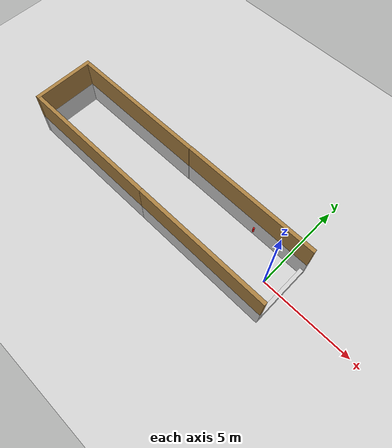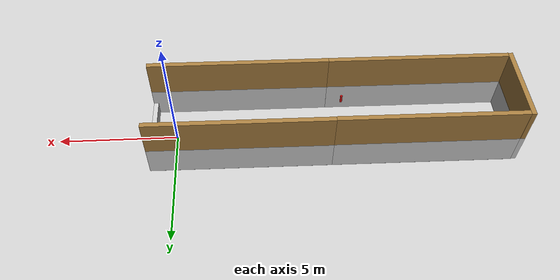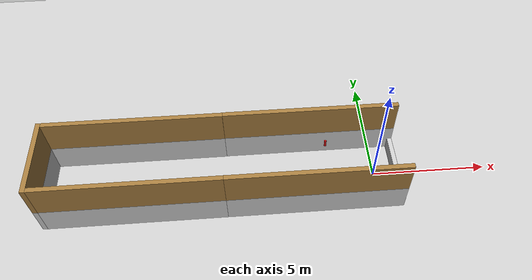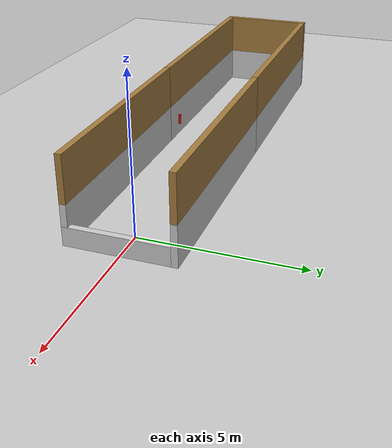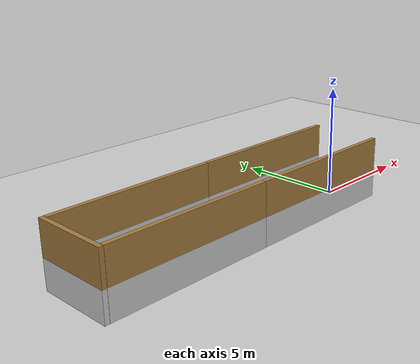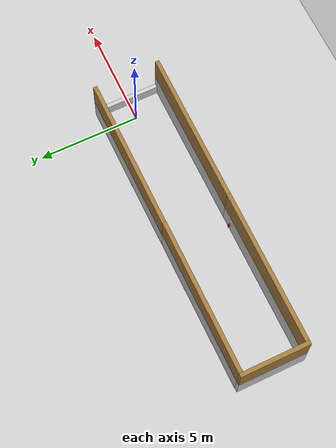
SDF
<sdf version="1.10">
 <world name="dc">
  <physics name="1ms" type="ignored">
   <max_step_size>0.001</max_step_size>
   <real_time_factor>1</real_time_factor>
   <real_time_update_rate>1000</real_time_update_rate>
  </physics>
  <plugin name="gz::sim::systems::Physics" filename="gz-sim-physics-system"/>
  <plugin name="gz::sim::systems::UserCommands" filename="gz-sim-user-commands-system"/>
  <plugin name="gz::sim::systems::SceneBroadcaster" filename="gz-sim-scene-broadcaster-system"/>
  <plugin name="gz::sim::systems::Contact" filename="gz-sim-contact-system"/>
  <gravity>0 0 -9.8000000000000007</gravity>
  <magnetic_field>5.5644999999999998e-06 2.2875799999999999e-05 -4.2388400000000002e-05</magnetic_field>
  <atmosphere type="adiabatic"/>
  <scene>
   <ambient>0.400000006 0.400000006 0.400000006 1</ambient>
   <background>0.699999988 0.699999988 0.699999988 1</background>
   <shadows>true</shadows>
   <grid>false</grid>
  </scene>
  <model name="ground_plane">
   <static>true</static>
   <link name="link">
    <collision name="collision">
     <geometry><plane><normal>0 0 1</normal><size>100 100</size></plane></geometry>
    </collision>
    <visual name="visual">
     <geometry><plane><normal>0 0 1</normal><size>100 100</size></plane></geometry>
     <material>
      <ambient>0.800000012 0.800000012 0.800000012 1</ambient>
      <diffuse>0.800000012 0.800000012 0.800000012 1</diffuse>
      <specular>0.800000012 0.800000012 0.800000012 1</specular>
     </material>
    </visual>
    <inertial>
     <mass>1</mass>
     <inertia><ixx>1</ixx><ixy>0</ixy><ixz>0</ixz><iyy>1</iyy><iyz>0</iyz><izz>1</izz></inertia>
    </inertial>
   </link>
   <pose>0 0 -0.10000000000000001 0 0 0</pose>
  </model>
  <model name="floor">
   <static>true</static>
   <link name="link">
    <collision name="collision">
     <geometry><plane><normal>0 0 1</normal><size>100 100</size></plane></geometry>
    </collision>
    <visual name="visual">
     <geometry><plane><normal>0 0 1</normal><size>15 3.3999999999999999</size></plane></geometry>
     <material>
      <ambient>0.800000012 0.800000012 0.800000012 1</ambient>
      <diffuse>0.800000012 0.800000012 0.800000012 1</diffuse>
      <pbr>
       <metal>
        <albedo_map>models/floor/materials/textures/floor.png</albedo_map>
        <roughness>0.9</roughness>
        <metalness>0.0</metalness>
       </metal>
      </pbr>
     </material>
    </visual>
    <inertial>
     <mass>1</mass>
     <inertia><ixx>1</ixx><ixy>0</ixy><ixz>0</ixz><iyy>1</iyy><iyz>0</iyz><izz>1</izz></inertia>
    </inertial>
   </link>
   <pose>-6.5026798248291016 0 0 0 0 0</pose>
  </model>
  <model name="grey_wall">
   <static>true</static>
   <link name="link">
    <collision name="collision">
     <geometry><box><size>7.5 0.20000000000000001 2.7999999999999998</size></box></geometry>
    </collision>
    <visual name="visual_baixo">
     <pose>0 0 0.65000000000000002 0 0 0</pose>
     <geometry><box><size>7.5 0.20000000000000001 1.3</size></box></geometry>
     <material>
      <ambient>0.800000012 0.800000012 0.800000012 1</ambient>
      <diffuse>0.800000012 0.800000012 0.800000012 1</diffuse>
      <pbr>
       <metal>
        <albedo_map>models/wall/materials/textures/brick_wall.png</albedo_map>
        <roughness>0.9</roughness>
        <metalness>0.0</metalness>
       </metal>
      </pbr>
     </material>
    </visual>
    <visual name="visual_cima">
     <pose>0 0 2.0499999999999998 0 0 0</pose>
     <geometry><box><size>7.5 0.20000000000000001 1.5</size></box></geometry>
     <material>
      <ambient>0.651000023 0.49000001 0.246999994 1</ambient>
      <diffuse>0.651000023 0.49000001 0.246999994 1</diffuse>
      <pbr><metal><roughness>0.8</roughness><metalness>0.0</metalness></metal></pbr>
     </material>
    </visual>
    <inertial>
     <mass>1</mass>
     <inertia><ixx>1</ixx><ixy>0</ixy><ixz>0</ixz><iyy>1</iyy><iyz>0</iyz><izz>1</izz></inertia>
    </inertial>
   </link>
   <pose>-10.220000000000001 -1.6100000000000001 0 0 0 0</pose>
  </model>
  <model name="grey_wall_0">
   <static>true</static>
   <link name="link">
    <collision name="collision">
     <geometry><box><size>7.5 0.20000000000000001 2.7999999999999998</size></box></geometry>
    </collision>
    <visual name="visual_baixo">
     <pose>0 0 0.65000000000000002 0 0 0</pose>
     <geometry><box><size>7.5 0.20000000000000001 1.3</size></box></geometry>
     <material>
      <ambient>0.800000012 0.800000012 0.800000012 1</ambient>
      <diffuse>0.800000012 0.800000012 0.800000012 1</diffuse>
      <pbr>
       <metal>
        <albedo_map>models/wall/materials/textures/brick_wall.png</albedo_map>
        <roughness>0.9</roughness>
        <metalness>0.0</metalness>
       </metal>
      </pbr>
     </material>
    </visual>
    <visual name="visual_cima">
     <pose>0 0 2.0499999999999998 0 0 0</pose>
     <geometry><box><size>7.5 0.20000000000000001 1.5</size></box></geometry>
     <material>
      <ambient>0.651000023 0.49000001 0.246999994 1</ambient>
      <diffuse>0.651000023 0.49000001 0.246999994 1</diffuse>
      <pbr><metal><roughness>0.8</roughness><metalness>0.0</metalness></metal></pbr>
     </material>
    </visual>
    <inertial>
     <mass>1</mass>
     <inertia><ixx>1</ixx><ixy>0</ixy><ixz>0</ixz><iyy>1</iyy><iyz>0</iyz><izz>1</izz></inertia>
    </inertial>
   </link>
   <pose>-2.7195999622344971 -1.6090199947357178 0 0 0 0</pose>
  </model>
  <model name="grey_wall_1">
   <static>true</static>
   <link name="link">
    <collision name="collision">
     <geometry><box><size>3.3999999999999999 0.20000000000000001 2.2999999999999998</size></box></geometry>
    </collision>
    <visual name="visual_baixo">
     <pose>0 0 1.6499999999999999 0 0 0</pose>
     <geometry><box><size>3.3999999999999999 0.20000000000000001 0.59999999999999998</size></box></geometry>
     <material>
      <ambient>0.800000012 0.800000012 0.800000012 1</ambient>
      <diffuse>0.800000012 0.800000012 0.800000012 1</diffuse>
      <pbr>
       <metal>
        <albedo_map>models/wall/materials/textures/brick_wall.png</albedo_map>
        <roughness>0.9</roughness>
        <metalness>0.0</metalness>
       </metal>
      </pbr>
     </material>
    </visual>
    <inertial>
     <mass>1</mass>
     <inertia><ixx>1</ixx><ixy>0</ixy><ixz>0</ixz><iyy>1</iyy><iyz>0</iyz><izz>1</izz></inertia>
    </inertial>
   </link>
   <pose>0.9298279881477356 -0.0082240896299481392 -1.350383996963501 0 0 -1.5700000042340219</pose>
  </model>
  <model name="grey_wall_2">
   <static>true</static>
   <link name="link">
    <collision name="collision">
     <geometry><box><size>7.5 0.20000000000000001 2.7999999999999998</size></box></geometry>
    </collision>
    <visual name="visual_baixo">
     <pose>0 0 0.65000000000000002 0 0 0</pose>
     <geometry><box><size>7.5 0.20000000000000001 1.3</size></box></geometry>
     <material>
      <ambient>0.800000012 0.800000012 0.800000012 1</ambient>
      <diffuse>0.800000012 0.800000012 0.800000012 1</diffuse>
      <pbr>
       <metal>
        <albedo_map>models/wall/materials/textures/brick_wall.png</albedo_map>
        <roughness>0.9</roughness>
        <metalness>0.0</metalness>
       </metal>
      </pbr>
     </material>
    </visual>
    <visual name="visual_cima">
     <pose>0 0 2.0499999999999998 0 0 0</pose>
     <geometry><box><size>7.5 0.20000000000000001 1.5</size></box></geometry>
     <material>
      <ambient>0.651000023 0.49000001 0.246999994 1</ambient>
      <diffuse>0.651000023 0.49000001 0.246999994 1</diffuse>
      <pbr><metal><roughness>0.8</roughness><metalness>0.0</metalness></metal></pbr>
     </material>
    </visual>
    <inertial>
     <mass>1</mass>
     <inertia><ixx>1</ixx><ixy>0</ixy><ixz>0</ixz><iyy>1</iyy><iyz>0</iyz><izz>1</izz></inertia>
    </inertial>
   </link>
   <pose>-2.7200000286102295 1.5986303091049194 0 0 0 0</pose>
  </model>
  <model name="grey_wall_3">
   <static>true</static>
   <link name="link">
    <collision name="collision">
     <geometry><box><size>7.5 0.20000000000000001 2.7999999999999998</size></box></geometry>
    </collision>
    <visual name="visual_baixo">
     <pose>0 0 0.65000000000000002 0 0 0</pose>
     <geometry><box><size>7.5 0.20000000000000001 1.3</size></box></geometry>
     <material>
      <ambient>0.800000012 0.800000012 0.800000012 1</ambient>
      <diffuse>0.800000012 0.800000012 0.800000012 1</diffuse>
      <pbr>
       <metal>
        <albedo_map>models/wall/materials/textures/brick_wall.png</albedo_map>
        <roughness>0.9</roughness>
        <metalness>0.0</metalness>
       </metal>
      </pbr>
     </material>
    </visual>
    <visual name="visual_cima">
     <pose>0 0 2.0499999999999998 0 0 0</pose>
     <geometry><box><size>7.5 0.20000000000000001 1.5</size></box></geometry>
     <material>
      <ambient>0.651000023 0.49000001 0.246999994 1</ambient>
      <diffuse>0.651000023 0.49000001 0.246999994 1</diffuse>
      <pbr><metal><roughness>0.8</roughness><metalness>0.0</metalness></metal></pbr>
     </material>
    </visual>
    <inertial>
     <mass>1</mass>
     <inertia><ixx>1</ixx><ixy>0</ixy><ixz>0</ixz><iyy>1</iyy><iyz>0</iyz><izz>1</izz></inertia>
    </inertial>
   </link>
   <pose>-10.220000267028809 1.586809515953064 0 0 0 0</pose>
  </model>
  <model name="grey_wall_4">
   <static>true</static>
   <link name="link">
    <collision name="collision">
     <geometry><box><size>3.3999999999999999 0.20000000000000001 2.7999999999999998</size></box></geometry>
    </collision>
    <visual name="visual_baixo">
     <pose>0 0 0.65000000000000002 0 0 0</pose>
     <geometry><box><size>3.3900000000000001 0.20000000000000001 1.3</size></box></geometry>
     <material>
      <ambient>0.800000012 0.800000012 0.800000012 1</ambient>
      <diffuse>0.800000012 0.800000012 0.800000012 1</diffuse>
      <pbr>
       <metal>
        <albedo_map>models/wall/materials/textures/brick_wall.png</albedo_map>
        <roughness>0.9</roughness>
        <metalness>0.0</metalness>
       </metal>
      </pbr>
     </material>
    </visual>
    <visual name="visual_cima">
     <pose>0 0 2.0499999999999998 0 0 0</pose>
     <geometry><box><size>3.3900000000000001 0.20000000000000001 1.5</size></box></geometry>
     <material>
      <ambient>0.651000023 0.49000001 0.246999994 1</ambient>
      <diffuse>0.651000023 0.49000001 0.246999994 1</diffuse>
      <pbr><metal><roughness>0.8</roughness><metalness>0.0</metalness></metal></pbr>
     </material>
    </visual>
    <inertial>
     <mass>1</mass>
     <inertia><ixx>1</ixx><ixy>0</ixy><ixz>0</ixz><iyy>1</iyy><iyz>0</iyz><izz>1</izz></inertia>
    </inertial>
   </link>
   <pose>-14.072199821472168 -0.011488200165331364 -0.0047772806137800217 0 0 -1.5700000042340219</pose>
  </model>
  <model name="Fire Extinguisher">
   <static>true</static>
   <model name="artifact_proximity_detector">
    <static>true</static>
    <plugin name="ignition::gazebo::systems::PerformerDetector" filename="libignition-gazebo-performer-detector-system.so">
     <topic>/subt_performer_detector</topic>
     <header_data><key>type</key><value>artifact_proximity</value></header_data>
     <geometry><box><scale>1.5 1.5 1.5</scale><size>10 10 10</size></box></geometry>
    </plugin>
   </model>
   <link name="link">
    <collision name="collision">
     <geometry><cylinder><radius>0.05</radius><length>0.35</length></cylinder></geometry>
    </collision>
    <visual name="visual">
     <geometry><cylinder><radius>0.05</radius><length>0.35</length></cylinder></geometry>
     <material><ambient>0.8 0.05 0.05 1</ambient><diffuse>0.8 0.05 0.05 1</diffuse></material>
    </visual>
    <inertial>
     <mass>1</mass>
     <inertia><ixx>1</ixx><ixy>0</ixy><ixz>0</ixz><iyy>1</iyy><iyz>0</iyz><izz>1</izz></inertia>
    </inertial>
   </link>
   <pose>-2 1.4286799430847168 0.60874712467193604 0 0 0</pose>
  </model>
  <model name="Fire Extinguisher_1">
   <static>true</static>
   <model name="artifact_proximity_detector">
    <static>true</static>
    <plugin name="ignition::gazebo::systems::PerformerDetector" filename="libignition-gazebo-performer-detector-system.so">
     <topic>/subt_performer_detector</topic>
     <header_data><key>type</key><value>artifact_proximity</value></header_data>
     <geometry><box><scale>1.0 1.0 1.0</scale><size>10 10 10</size></box></geometry>
    </plugin>
   </model>
   <link name="link">
    <collision name="collision">
     <geometry><cylinder><radius>0.05</radius><length>0.35</length></cylinder></geometry>
    </collision>
    <visual name="visual">
     <geometry><cylinder><radius>0.05</radius><length>0.35</length></cylinder></geometry>
     <material><ambient>0.8 0.05 0.05 1</ambient><diffuse>0.8 0.05 0.05 1</diffuse></material>
    </visual>
    <inertial>
     <mass>1</mass>
     <inertia><ixx>1</ixx><ixy>0</ixy><ixz>0</ixz><iyy>1</iyy><iyz>0</iyz><izz>1</izz></inertia>
    </inertial>
   </link>
   <pose>-7.1486000000000001 -1.4318 0.60699999999999998 0 0 0</pose>
  </model>
  <light name="pointlight" type="point">
   <pose>-1 0 2.7799999999999998 0 0 0</pose>
   <visualize>false</visualize>
   <cast_shadows>false</cast_shadows>
   <intensity>1</intensity>
   <direction>0 0 -1</direction>
   <diffuse>0.5 0.5 0.5 1</diffuse>
   <specular>0.5 0.5 0.5 1</specular>
   <attenuation>
    <range>4</range>
    <linear>0.5</linear>
    <constant>0.20000000000000001</constant>
    <quadratic>0.01</quadratic>
   </attenuation>
   <spot><inner_angle>0</inner_angle><outer_angle>0</outer_angle><falloff>0</falloff></spot>
  </light>
  <light name="pointlight_0" type="point">
   <pose>-5 0 2.7799999999999998 0 0 0</pose>
   <visualize>false</visualize>
   <cast_shadows>false</cast_shadows>
   <intensity>1</intensity>
   <direction>0 0 -1</direction>
   <diffuse>0.5 0.5 0.5 1</diffuse>
   <specular>0.5 0.5 0.5 1</specular>
   <attenuation>
    <range>4</range>
    <linear>0.5</linear>
    <constant>0.20000000000000001</constant>
    <quadratic>0.01</quadratic>
   </attenuation>
   <spot><inner_angle>0</inner_angle><outer_angle>0</outer_angle><falloff>0</falloff></spot>
  </light>
  <light name="pointlight_1" type="point">
   <pose>-9 0 2.7799999999999998 0 0 0</pose>
   <visualize>false</visualize>
   <cast_shadows>false</cast_shadows>
   <intensity>1</intensity>
   <direction>0 0 -1</direction>
   <diffuse>0.5 0.5 0.5 1</diffuse>
   <specular>0.5 0.5 0.5 1</specular>
   <attenuation>
    <range>4</range>
    <linear>0.5</linear>
    <constant>0.20000000000000001</constant>
    <quadratic>0.01</quadratic>
   </attenuation>
   <spot><inner_angle>0</inner_angle><outer_angle>0</outer_angle><falloff>0</falloff></spot>
  </light>
  <light name="pointlight_2" type="point">
   <pose>-13 0 2.7799999999999998 0 0 0</pose>
   <visualize>false</visualize>
   <cast_shadows>false</cast_shadows>
   <intensity>1</intensity>
   <direction>0 0 -1</direction>
   <diffuse>0.5 0.5 0.5 1</diffuse>
   <specular>0.5 0.5 0.5 1</specular>
   <attenuation>
    <range>4</range>
    <linear>0.5</linear>
    <constant>0.20000000000000001</constant>
    <quadratic>0.01</quadratic>
   </attenuation>
   <spot><inner_angle>0</inner_angle><outer_angle>0</outer_angle><falloff>0</falloff></spot>
  </light>
 </world>
</sdf>
